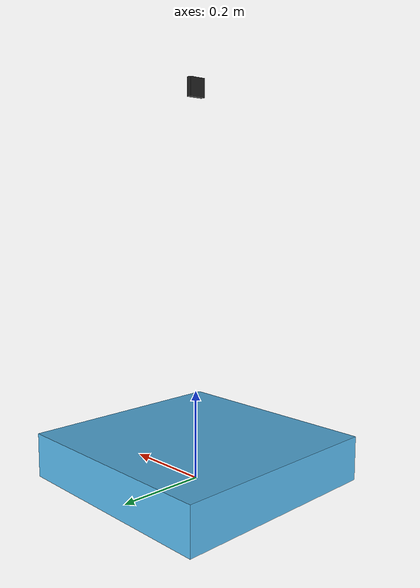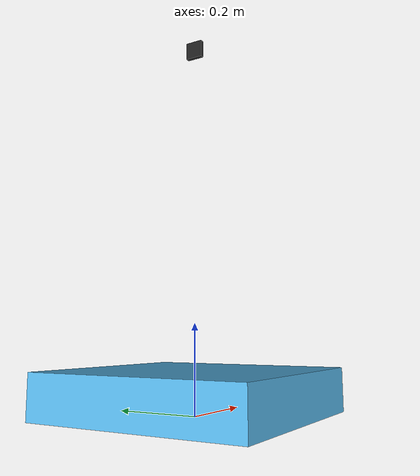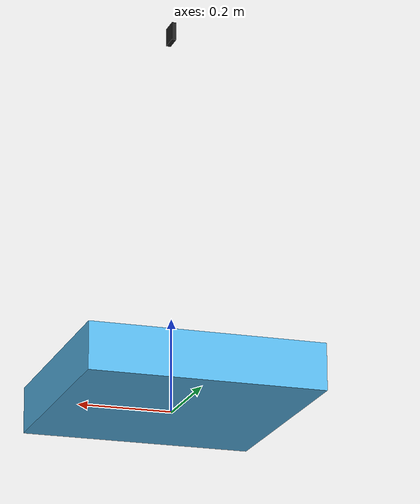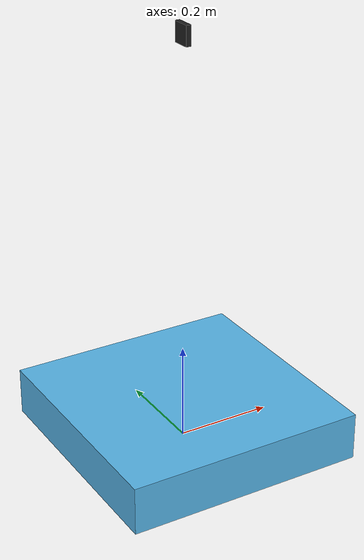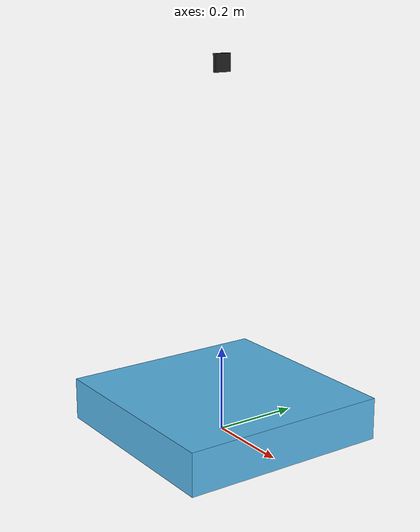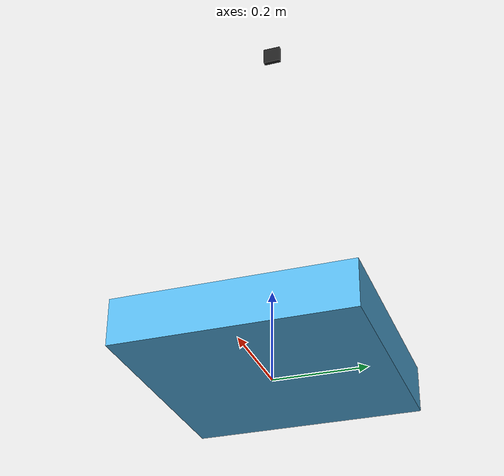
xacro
<?xml version="1.0"?>
<robot xmlns:xacro="http://www.ros.org/wiki/xacro" name="test_usbcamera">

  <xacro:property name="M_PI" value="3.14159"/>

  <!-- Base Footprint -->
  <link name="base_footprint" />

  <!-- Base Link-->
  <joint name="footprint" type="fixed" >
   <parent link="base_footprint" />
    <child link="base_link" />
    <origin xyz="0 0 0.05" rpy="0 0 0" />
  </joint>

  <link name="base_link" >
    <visual>
      <geometry>
        <box size="0.5 0.5 0.1" />
      </geometry>
    </visual>
    <collision>
      <geometry>
        <box size="0.5 0.5 0.1" />
      </geometry>
    </collision>
    <inertial>
      <origin xyz="0 0 0"/>
      <mass value="10"/>
      <inertia ixx="3.0" ixy="0.0" ixz="0.0"
               iyy="3.0" iyz="0.0"
               izz="3.0" />
    </inertial>
  </link>

    <joint name="camera_frame_joint" type="fixed">
      <parent link="base_link"/>
      <child link="camera_link"/>
      <origin xyz="0 0 0.8" rpy="0 0 -3.14" />
    </joint>

  <!-- camera link -->
  <xacro:include filename="$(find gazebo_robot)/sensors/usb_camera/urdf/usb_camera.xacro"/>
  <xacro:usb_camera  prefix = "camera"/>

</robot>

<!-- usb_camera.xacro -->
<robot xmlns:xacro="http://www.ros.org/wiki/xacro" name="camera">

    <xacro:macro name="usb_camera" params="prefix:=camera">
        <link name="${prefix}_link">
            <inertial>
                <mass value="0.01" />
                <origin xyz="0 0 0" />
                <inertia ixx="0.01" ixy="0.0" ixz="0.0"
                         iyy="0.01" iyz="0.0"
                         izz="0.01" />
            </inertial>

            <visual>
                <origin xyz=" 0 0 0 " rpy="0 0 0" />
                <geometry>
                    <box size="0.01 0.04 0.04" />
                </geometry>
                <material name="black"/>
            </visual>

            <collision>
                <origin xyz="0.0 0.0 0.0" rpy="0 0 0" />
                <geometry>
                    <box size="0.01 0.04 0.04" />
                </geometry>
            </collision>
        </link>
    </xacro:macro>

</robot>
